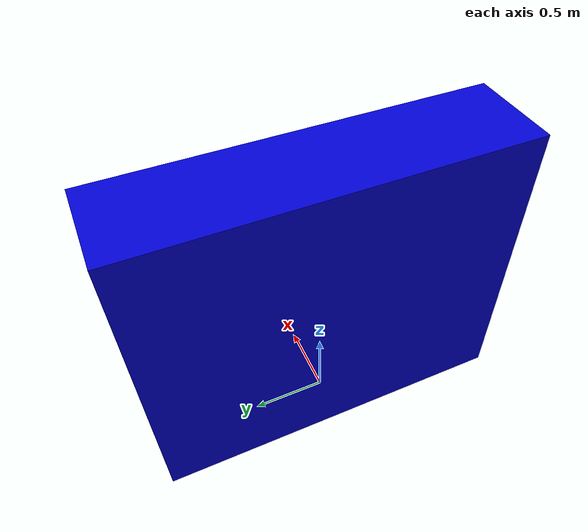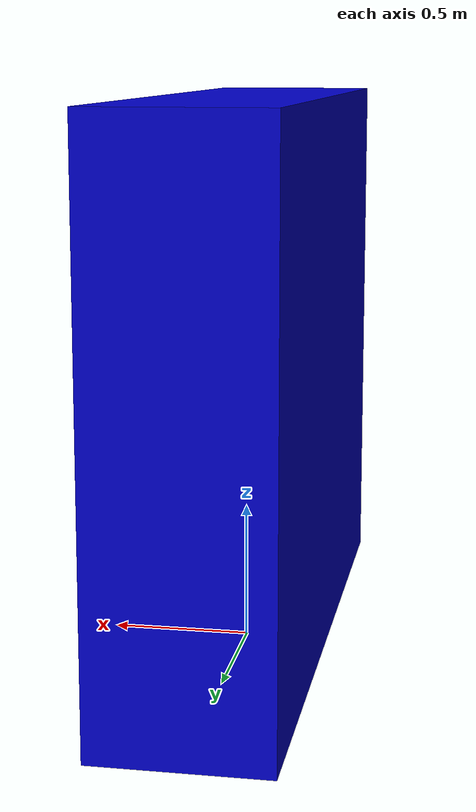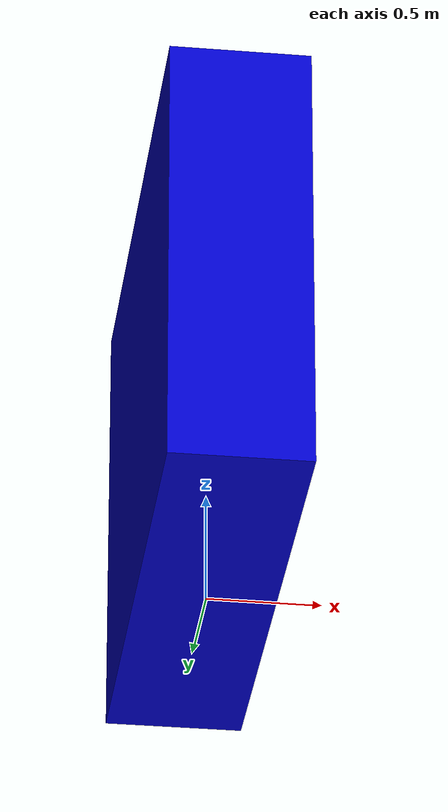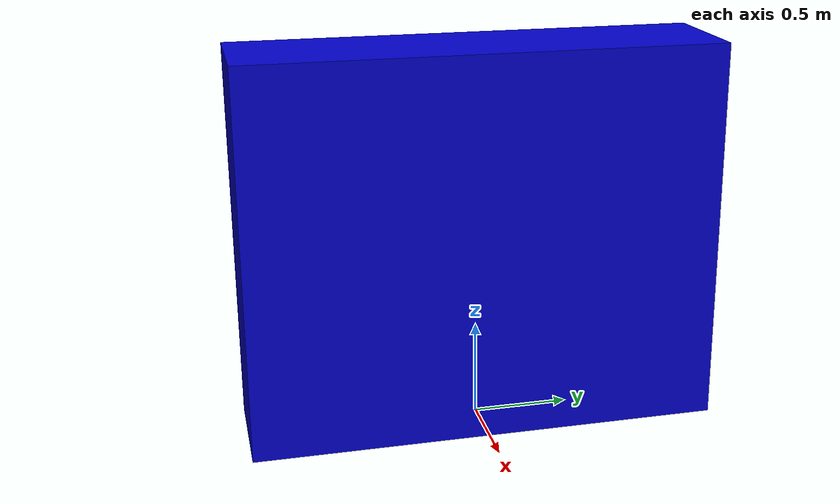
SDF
<?xml version="1.0"?>
<sdf version="1.7">
  <model name="inventory_rack">
    <static>true</static>
    <link name="rack_link">
      <pose>0 0 1 0 0 0</pose>
      <collision name="rack_collision">
        <geometry>
          <box>
            <size>0.6096 2.4384  2.0</size>
          </box>
        </geometry>
      </collision>
      <visual name="rack_visual">
        <geometry>
          <box>
            <size>0.6096 2.4384 2.0</size>
          </box>
        </geometry>
         <material>
          <ambient>0.0 0.0 0.5 1</ambient>
          <diffuse>0.0 0.0 0.8 1</diffuse>
          <specular>0.2 0.2 0.4 1</specular>
        </material>
      </visual>
      <inertial>
        <mass>100</mass>
        <inertia>
          <ixx>33.89</ixx>
          <ixy>0</ixy>
          <ixz>0</ixz>
          <iyy>133.6</iyy>
          <iyz>0</iyz>
          <izz>166.7</izz>
        </inertia>
      </inertial>
    </link>
  </model>
</sdf>
